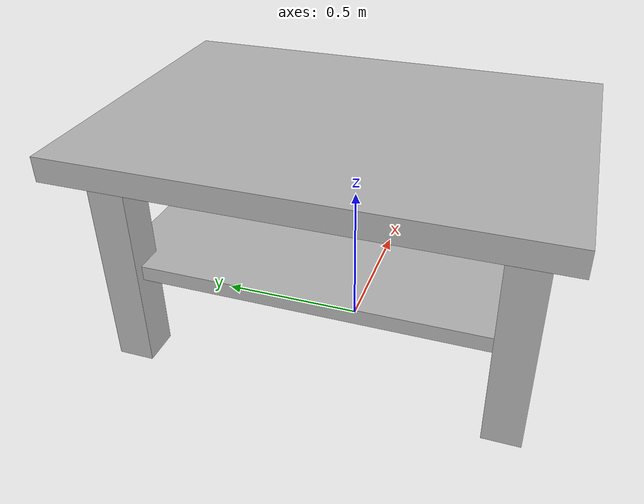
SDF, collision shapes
<sdf version='1.6'>
  <model name='table_living_room'>
    <link name='base_link'>
      <pose frame=''>0 0 0 0 -0 0</pose>
      <inertial>
        <pose frame=''>-0.03 0.025 0.75 0 -0 0</pose>
        <mass>5</mass>
        <inertia>
          <ixx>0.9401662906</ixx>
          <ixy>0</ixy>
          <ixz>0</ixz>
          <iyy>0.46204148185</iyy>
          <iyz>0</iyz>
          <izz>1.39687444125</izz>
        </inertia>
      </inertial>
      <collision name='base_link_collision'>
        <pose frame=''>-0.03 0.025 0.75 0 -0 0</pose>
        <geometry>
          <box>
            <size>1.05 1.5 0.08</size>
          </box>
        </geometry>
      </collision>
      <collision name='base_inferior_link_collision'>
        <pose frame=''>-0.03 0.025 0.35 0 -0 0</pose>
        <geometry>
          <box>
            <size>0.8 1.3 0.05</size>
          </box>
        </geometry>
      </collision>
      <collision name='leg1_link_collision'>
        <pose frame=''>-0.4 0.63 0.39 0 -0 0</pose>
        <geometry>
          <box>
            <size>0.12 0.12 0.75</size>
          </box>
        </geometry>
      </collision>
      <collision name='leg2_link_collision'>
        <pose frame=''>0.35 0.63 0.39 0 -0 0</pose>
        <geometry>
          <box>
            <size>0.12 0.12 0.75</size>
          </box>
        </geometry>
      </collision>
      <collision name='leg3_link_collision'>
        <pose frame=''>0.35 -0.59 0.39 0 -0 0</pose>
        <geometry>
          <box>
            <size>0.12 0.12 0.75</size>
          </box>
        </geometry>
      </collision>
      <collision name='leg4_link_collision'>
        <pose frame=''>-0.4 -0.59 0.39 0 -0 0</pose>
        <geometry>
          <box>
            <size>0.12 0.12 0.75</size>
          </box>
        </geometry>
      </collision>
      <visual name='base_link_visual'>
        <pose frame=''>0 0 0 0 -0 0</pose>
        <geometry>
          <mesh>
            <scale>1.5 1.2 1.4</scale>
            <uri>/opt/ros/kinetic/share/cob_gazebo_objects/Media/models/table_living_room.dae</uri>
          </mesh>
        </geometry>
      </visual>
    </link>
    <static>0</static>
  </model>
</sdf>
